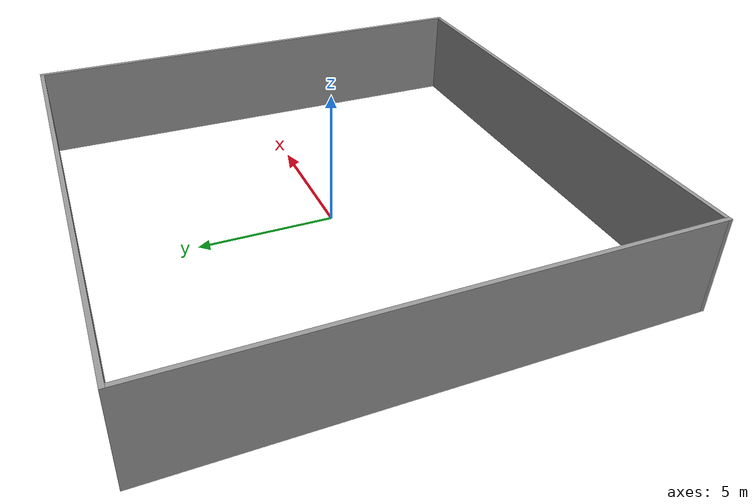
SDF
<?xml version='1.0'?>
<sdf version='1.6'>
  <model name='Wall_square'>
    <pose frame=''>0 0 0 0 -0 0</pose>
    <link name='Wall_31'>
      <collision name='Wall_31_Collision'>
        <geometry>
          <box>
            <size>18.15 0.15 3.5</size>
          </box>
        </geometry>
        <pose frame=''>0 0 1.75 0 -0 0</pose>
      </collision>
      <visual name='Wall_31_Visual'>
        <pose frame=''>0 0 1.75 0 -0 0</pose>
        <geometry>
          <box>
            <size>18.15 0.15 3.5</size>
          </box>
        </geometry>
        <material>
          <script>
            <uri>file://media/materials/scripts/gazebo.material</uri>
            <name>Gazebo/Grey</name>
          </script>
          <ambient>1 1 1 1</ambient>
        </material>
        <meta>
          <layer>0</layer>
        </meta>
      </visual>
      <pose frame=''>0 9 0 0 -0 0</pose>
    </link>

    <link name='Wall_34'>
      <collision name='Wall_34_Collision'>
        <geometry>
          <box>
            <size>18.15 0.15 3.5</size>
          </box>
        </geometry>
        <pose frame=''>0 0 1.75 0 -0 0</pose>
      </collision>
      <visual name='Wall_34_Visual'>
        <pose frame=''>0 0 1.75 0 -0 0</pose>
        <geometry>
          <box>
            <size>18.15 0.15 3.5</size>
          </box>
        </geometry>
        <material>
          <script>
            <uri>file://media/materials/scripts/gazebo.material</uri>
            <name>Gazebo/Grey</name>
          </script>
          <ambient>1 1 1 1</ambient>
        </material>
        <meta>
          <layer>0</layer>
        </meta>
      </visual>
      <pose frame=''>9 0 0 0 -0 -1.5708</pose>
    </link>

      <link name='Wall_35'>
      <collision name='Wall_35_Collision'>
        <geometry>
          <box>
            <size>18.15 0.15 3.5</size>
          </box>
        </geometry>
        <pose frame=''>0 0 1.75 0 -0 0</pose>
      </collision>
      <visual name='Wall_35_Visual'>
        <pose frame=''>0 0 1.75 0 -0 0</pose>
        <geometry>
          <box>
            <size>18.15 0.15 3.5</size>
          </box>
        </geometry>
        <material>
          <script>
            <uri>file://media/materials/scripts/gazebo.material</uri>
            <name>Gazebo/Grey</name>
          </script>
          <ambient>1 1 1 1</ambient>
        </material>
        <meta>
          <layer>0</layer>
        </meta>
      </visual>
      <pose frame=''>0 -9 0 0 -0 3.14159</pose>
    </link>

    <link name='Wall_36'>
      <collision name='Wall_36_Collision'>
        <geometry>
          <box>
            <size>18.15 0.15 3.5</size>
          </box>
        </geometry>
        <pose frame=''>0 0 1.75 0 -0 0</pose>
      </collision>
      <visual name='Wall_36_Visual'>
        <pose frame=''>0 0 1.75 0 -0 0</pose>
        <geometry>
          <box>
            <size>18.15 0.15 3.5</size>
          </box>
        </geometry>
        <material>
          <script>
            <uri>file://media/materials/scripts/gazebo.material</uri>
            <name>Gazebo/Grey</name>
          </script>
          <ambient>1 1 1 1</ambient>
        </material>
        <meta>
          <layer>0</layer>
        </meta>
      </visual>
      <pose frame=''>-9 0 0 0 -0 1.5708</pose>
    </link>
    <static>1</static>
  </model>
</sdf>
